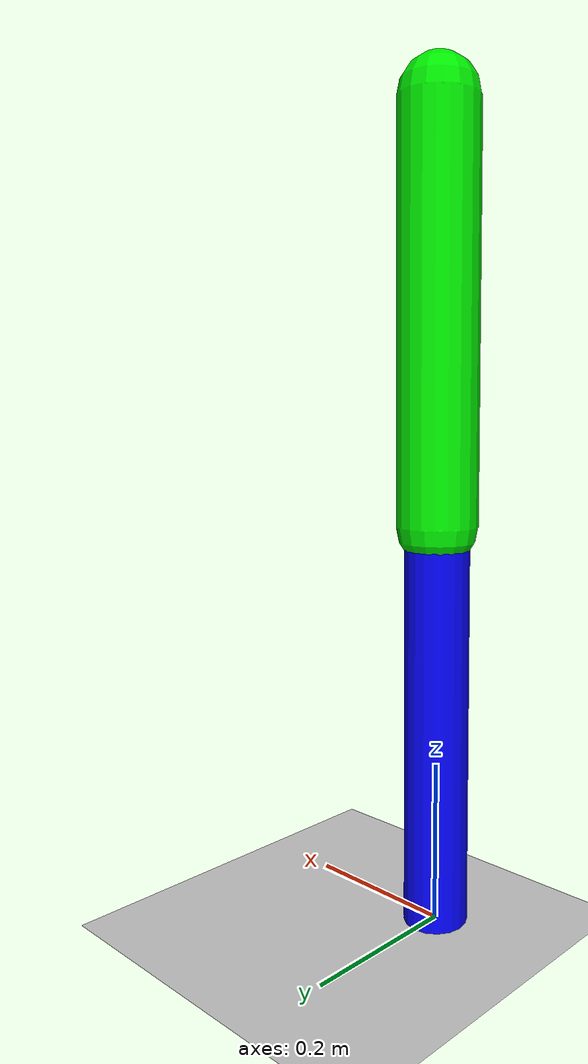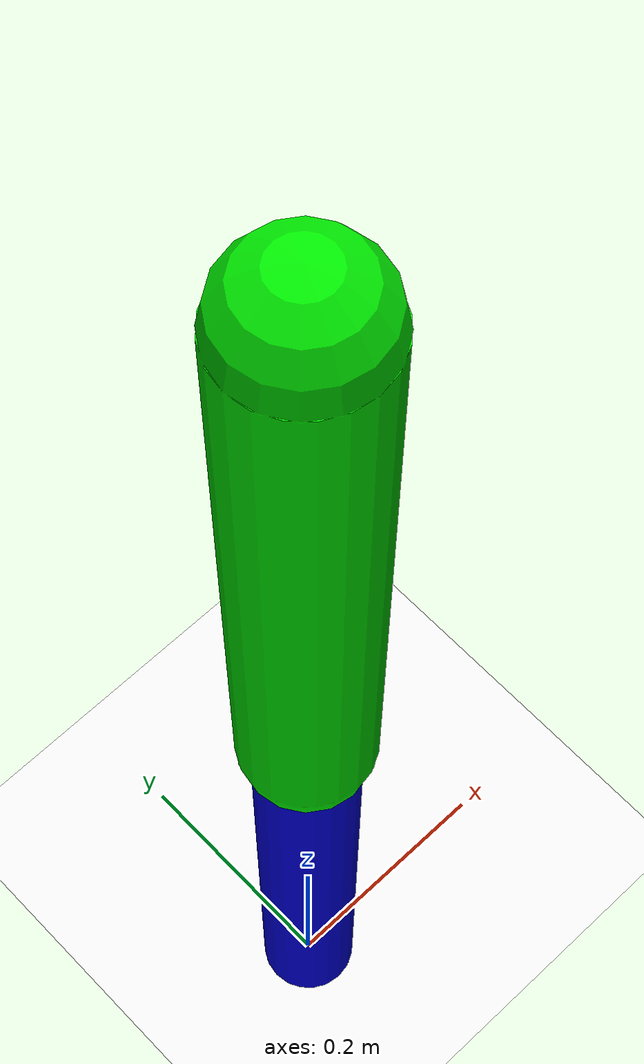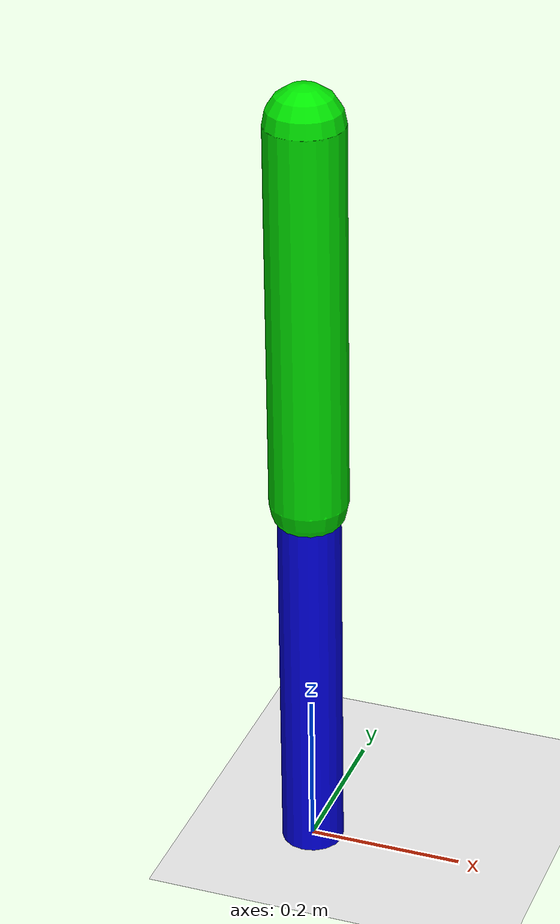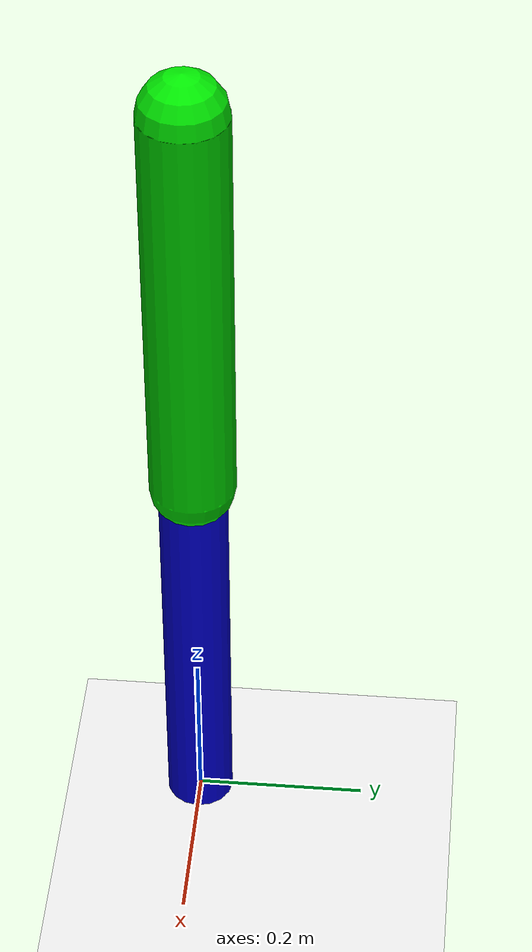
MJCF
<mujoco model="unitree_g1_simplified">
    <option timestep="0.002"/>
    <worldbody>
        <light diffuse=".5 .5 .5" pos="0 0 3" dir="0 0 -1"/>
        <geom type="plane" size="1 1 0.1" rgba=".9 0.9 0.9 1"/>
        <!-- A simplified 'leg' to demonstrate control -->
        <body pos="0 0 1">
            <joint name="hip" type="hinge" axis="0 1 0" range="-45 45"/>
            <geom type="capsule" fromto="0 0 0 0 0 -0.5" size="0.05" rgba="0 .9 0 1"/>
            <body pos="0 0 -0.5">
                <joint name="knee" type="hinge" axis="0 1 0" range="-90 0"/>
                <geom type="capsule" fromto="0 0 0 0 0 -0.5" size="0.04" rgba="0 0 .9 1"/>
            </body>
        </body>
    </worldbody>
    <actuator>
        <motor joint="hip" gear="100" name="hip_motor"/>
        <motor joint="knee" gear="100" name="knee_motor"/>
    </actuator>
</mujoco>
